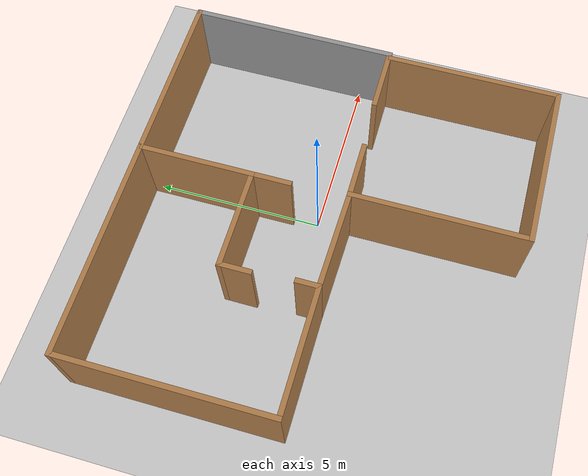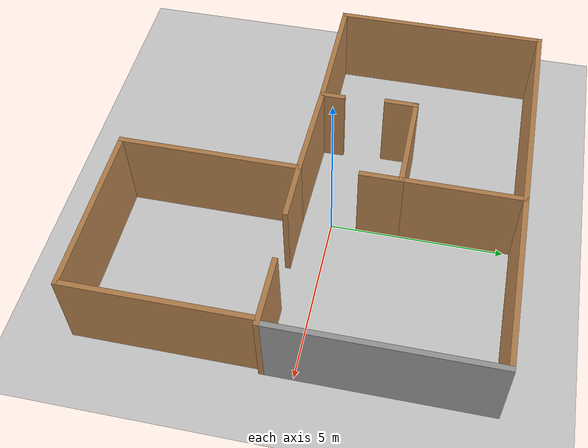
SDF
<?xml version="1.0"?>
<sdf version="1.4">

    <world name="world_name">
        <include>
            <uri>model://ground_plane</uri>
        </include>
        <include>
            <uri>model://sun</uri>
        </include>
        <include>
            <uri>model:///home/vishal/catkin_ws/src/apostile_robot/models/floor_plan</uri>

        </include>

    </world>
</sdf>

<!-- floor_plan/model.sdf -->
<sdf version='1.6'>
  <model name='floor_plan'>
    <pose frame=''>-0.728978 -0.389592 0 0 -0 0</pose>
    <link name='Wall_0'>
      <collision name='Wall_0_Collision'>
        <geometry>
          <box>
            <size>6.25 0.15 2.5</size>
          </box>
        </geometry>
        <pose frame=''>0 0 1.25 0 -0 0</pose>
      </collision>
      <visual name='Wall_0_Visual'>
        <pose frame=''>0 0 1.25 0 -0 0</pose>
        <geometry>
          <box>
            <size>6.25 0.15 2.5</size>
          </box>
        </geometry>
        <material>
          <script>
            <uri>file://media/materials/scripts/gazebo.material</uri>
            <name>Gazebo/Wood</name>
          </script>
          <ambient>1 1 1 1</ambient>
        </material>
        <meta>
          <layer>0</layer>
        </meta>
      </visual>
      <pose frame=''>-5.725 2.58398 0 0 -0 -1.5708</pose>
    </link>
    <link name='Wall_1'>
      <collision name='Wall_1_Collision'>
        <geometry>
          <box>
            <size>3.75 0.15 2.5</size>
          </box>
        </geometry>
        <pose frame=''>0 0 1.25 0 -0 0</pose>
      </collision>
      <visual name='Wall_1_Visual'>
        <pose frame=''>0 0 1.25 0 -0 0</pose>
        <geometry>
          <box>
            <size>3.75 0.15 2.5</size>
          </box>
        </geometry>
        <material>
          <script>
            <uri>file://media/materials/scripts/gazebo.material</uri>
            <name>Gazebo/Wood</name>
          </script>
          <ambient>1 1 1 1</ambient>
        </material>
        <meta>
          <layer>0</layer>
        </meta>
      </visual>
      <pose frame=''>-3.925 -0.466021 0 0 -0 0</pose>
    </link>
    <link name='Wall_10'>
      <collision name='Wall_10_Collision'>
        <geometry>
          <box>
            <size>6.25 0.15 2.5</size>
          </box>
        </geometry>
        <pose frame=''>0 0 1.25 0 -0 0</pose>
      </collision>
      <visual name='Wall_10_Visual'>
        <pose frame=''>0 0 1.25 0 -0 0</pose>
        <geometry>
          <box>
            <size>6.25 0.15 2.5</size>
          </box>
        </geometry>
        <material>
          <script>
            <uri>file://media/materials/scripts/gazebo.material</uri>
            <name>Gazebo/Grey</name>
          </script>
          <ambient>1 1 1 1</ambient>
        </material>
        <meta>
          <layer>0</layer>
        </meta>
      </visual>
      <pose frame=''>5.725 2.58398 0 0 -0 -1.5708</pose>
    </link>
    <link name='Wall_11'>
      <collision name='Wall_11_Collision'>
        <geometry>
          <box>
            <size>2 0.15 2.5</size>
          </box>
        </geometry>
        <pose frame=''>0 0 1.25 0 -0 0</pose>
      </collision>
      <visual name='Wall_11_Visual'>
        <pose frame=''>0 0 1.25 0 -0 0</pose>
        <geometry>
          <box>
            <size>2 0.15 2.5</size>
          </box>
        </geometry>
        <material>
          <script>
            <uri>file://media/materials/scripts/gazebo.material</uri>
            <name>Gazebo/Wood</name>
          </script>
          <ambient>1 1 1 1</ambient>
        </material>
        <meta>
          <layer>0</layer>
        </meta>
      </visual>
      <pose frame=''>4.8 -0.466021 0 0 -0 3.14159</pose>
    </link>
    <link name='Wall_13'>
      <collision name='Wall_13_Collision'>
        <geometry>
          <box>
            <size>1.75 0.15 2.5</size>
          </box>
        </geometry>
        <pose frame=''>0 0 1.25 0 -0 0</pose>
      </collision>
      <visual name='Wall_13_Visual'>
        <pose frame=''>0 0 1.25 0 -0 0</pose>
        <geometry>
          <box>
            <size>1.75 0.15 2.5</size>
          </box>
        </geometry>
        <material>
          <script>
            <uri>file://media/materials/scripts/gazebo.material</uri>
            <name>Gazebo/Wood</name>
          </script>
          <ambient>1 1 1 1</ambient>
        </material>
        <meta>
          <layer>0</layer>
        </meta>
      </visual>
      <pose frame=''>1.54685 -0.533979 0 0 -0 3.14159</pose>
    </link>
    <link name='Wall_14'>
      <collision name='Wall_14_Collision'>
        <geometry>
          <box>
            <size>5.25 0.15 2.5</size>
          </box>
        </geometry>
        <pose frame=''>0 0 1.25 0 -0 0</pose>
      </collision>
      <visual name='Wall_14_Visual'>
        <pose frame=''>0 0 1.25 0 -0 0</pose>
        <geometry>
          <box>
            <size>5.25 0.15 2.5</size>
          </box>
        </geometry>
        <material>
          <script>
            <uri>file://media/materials/scripts/gazebo.material</uri>
            <name>Gazebo/Wood</name>
          </script>
          <ambient>1 1 1 1</ambient>
        </material>
        <meta>
          <layer>0</layer>
        </meta>
      </visual>
      <pose frame=''>0.746848 -3.08398 0 0 -0 -1.5708</pose>
    </link>
    <link name='Wall_15'>
      <collision name='Wall_15_Collision'>
        <geometry>
          <box>
            <size>5 0.15 2.5</size>
          </box>
        </geometry>
        <pose frame=''>0 0 1.25 0 -0 0</pose>
      </collision>
      <visual name='Wall_15_Visual'>
        <pose frame=''>0 0 1.25 0 -0 0</pose>
        <geometry>
          <box>
            <size>5 0.15 2.5</size>
          </box>
        </geometry>
        <material>
          <script>
            <uri>file://media/materials/scripts/gazebo.material</uri>
            <name>Gazebo/Wood</name>
          </script>
          <ambient>1 1 1 1</ambient>
        </material>
        <meta>
          <layer>0</layer>
        </meta>
      </visual>
      <pose frame=''>3.17185 -5.63398 0 0 -0 0</pose>
    </link>
    <link name='Wall_16'>
      <collision name='Wall_16_Collision'>
        <geometry>
          <box>
            <size>5.25 0.15 2.5</size>
          </box>
        </geometry>
        <pose frame=''>0 0 1.25 0 -0 0</pose>
      </collision>
      <visual name='Wall_16_Visual'>
        <pose frame=''>0 0 1.25 0 -0 0</pose>
        <geometry>
          <box>
            <size>5.25 0.15 2.5</size>
          </box>
        </geometry>
        <material>
          <script>
            <uri>file://media/materials/scripts/gazebo.material</uri>
            <name>Gazebo/Wood</name>
          </script>
          <ambient>1 1 1 1</ambient>
        </material>
        <meta>
          <layer>0</layer>
        </meta>
      </visual>
      <pose frame=''>5.59685 -3.08398 0 0 -0 1.5708</pose>
    </link>
    <link name='Wall_18'>
      <collision name='Wall_18_Collision'>
        <geometry>
          <box>
            <size>1.25 0.15 2.5</size>
          </box>
        </geometry>
        <pose frame=''>0 0 1.25 0 -0 0</pose>
      </collision>
      <visual name='Wall_18_Visual'>
        <pose frame=''>0 0 1.25 0 -0 0</pose>
        <geometry>
          <box>
            <size>1.25 0.15 2.5</size>
          </box>
        </geometry>
        <material>
          <script>
            <uri>file://media/materials/scripts/gazebo.material</uri>
            <name>Gazebo/Wood</name>
          </script>
          <ambient>1 1 1 1</ambient>
        </material>
        <meta>
          <layer>0</layer>
        </meta>
      </visual>
      <pose frame=''>0.625 1.73398 0 0 -0 -1.5708</pose>
    </link>
    <link name='Wall_2'>
      <collision name='Wall_2_Collision'>
        <geometry>
          <box>
            <size>0.75 0.15 2.5</size>
          </box>
        </geometry>
        <pose frame=''>0 0 1.25 0 -0 0</pose>
      </collision>
      <visual name='Wall_2_Visual'>
        <pose frame=''>0 0 1.25 0 -0 0</pose>
        <geometry>
          <box>
            <size>0.75 0.15 2.5</size>
          </box>
        </geometry>
        <material>
          <script>
            <uri>file://media/materials/scripts/gazebo.material</uri>
            <name>Gazebo/Wood</name>
          </script>
          <ambient>1 1 1 1</ambient>
        </material>
        <meta>
          <layer>0</layer>
        </meta>
      </visual>
      <pose frame=''>-2.125 -0.166021 0 0 -0 1.5708</pose>
    </link>
    <link name='Wall_20'>
      <collision name='Wall_20_Collision'>
        <geometry>
          <box>
            <size>3.02265 0.15 2.5</size>
          </box>
        </geometry>
        <pose frame=''>0 0 1.25 0 -0 0</pose>
      </collision>
      <visual name='Wall_20_Visual'>
        <pose frame=''>0 0 1.25 0 -0 0</pose>
        <geometry>
          <box>
            <size>3.02265 0.15 2.5</size>
          </box>
        </geometry>
        <material>
          <script>
            <uri>file://media/materials/scripts/gazebo.material</uri>
            <name>Gazebo/Wood</name>
          </script>
          <ambient>1 1 1 1</ambient>
        </material>
        <meta>
          <layer>0</layer>
        </meta>
      </visual>
      <pose frame=''>-0.689076 -0.5 0 0 -0 3.11793</pose>
    </link>
    <link name='Wall_4'>
      <collision name='Wall_4_Collision'>
        <geometry>
          <box>
            <size>6.5 0.15 2.5</size>
          </box>
        </geometry>
        <pose frame=''>0 0 1.25 0 -0 0</pose>
      </collision>
      <visual name='Wall_4_Visual'>
        <pose frame=''>0 0 1.25 0 -0 0</pose>
        <geometry>
          <box>
            <size>6.5 0.15 2.5</size>
          </box>
        </geometry>
        <material>
          <script>
            <uri>file://media/materials/scripts/gazebo.material</uri>
            <name>Gazebo/Wood</name>
          </script>
          <ambient>1 1 1 1</ambient>
        </material>
        <meta>
          <layer>0</layer>
        </meta>
      </visual>
      <pose frame=''>-2.55 5.63398 0 0 -0 0</pose>
    </link>
    <link name='Wall_5'>
      <collision name='Wall_5_Collision'>
        <geometry>
          <box>
            <size>3.5 0.15 2.5</size>
          </box>
        </geometry>
        <pose frame=''>0 0 1.25 0 -0 0</pose>
      </collision>
      <visual name='Wall_5_Visual'>
        <pose frame=''>0 0 1.25 0 -0 0</pose>
        <geometry>
          <box>
            <size>3.5 0.15 2.5</size>
          </box>
        </geometry>
        <material>
          <script>
            <uri>file://media/materials/scripts/gazebo.material</uri>
            <name>Gazebo/Wood</name>
          </script>
          <ambient>1 1 1 1</ambient>
        </material>
        <meta>
          <layer>0</layer>
        </meta>
      </visual>
      <pose frame=''>0.625 3.95898 0 0 -0 -1.5708</pose>
    </link>
    <link name='Wall_6'>
      <collision name='Wall_6_Collision'>
        <geometry>
          <box>
            <size>3 0.15 2.5</size>
          </box>
        </geometry>
        <pose frame=''>0 0 1.25 0 -0 0</pose>
      </collision>
      <visual name='Wall_6_Visual'>
        <pose frame=''>0 0 1.25 0 -0 0</pose>
        <geometry>
          <box>
            <size>3 0.15 2.5</size>
          </box>
        </geometry>
        <material>
          <script>
            <uri>file://media/materials/scripts/gazebo.material</uri>
            <name>Gazebo/Wood</name>
          </script>
          <ambient>1 1 1 1</ambient>
        </material>
        <meta>
          <layer>0</layer>
        </meta>
      </visual>
      <pose frame=''>-0.8 2.28398 0 0 -0 3.14159</pose>
    </link>
    <link name='Wall_7'>
      <collision name='Wall_7_Collision'>
        <geometry>
          <box>
            <size>1 0.15 2.5</size>
          </box>
        </geometry>
        <pose frame=''>0 0 1.25 0 -0 0</pose>
      </collision>
      <visual name='Wall_7_Visual'>
        <pose frame=''>0 0 1.25 0 -0 0</pose>
        <geometry>
          <box>
            <size>1 0.15 2.5</size>
          </box>
        </geometry>
        <material>
          <script>
            <uri>file://media/materials/scripts/gazebo.material</uri>
            <name>Gazebo/Wood</name>
          </script>
          <ambient>1 1 1 1</ambient>
        </material>
        <meta>
          <layer>0</layer>
        </meta>
      </visual>
      <pose frame=''>-2.225 1.85898 0 0 -0 -1.5708</pose>
    </link>
    <link name='Wall_9'>
      <collision name='Wall_9_Collision'>
        <geometry>
          <box>
            <size>5.25 0.15 2.5</size>
          </box>
        </geometry>
        <pose frame=''>0 0 1.25 0 -0 0</pose>
      </collision>
      <visual name='Wall_9_Visual'>
        <pose frame=''>0 0 1.25 0 -0 0</pose>
        <geometry>
          <box>
            <size>5.25 0.15 2.5</size>
          </box>
        </geometry>
        <material>
          <script>
            <uri>file://media/materials/scripts/gazebo.material</uri>
            <name>Gazebo/Wood</name>
          </script>
          <ambient>1 1 1 1</ambient>
        </material>
        <meta>
          <layer>0</layer>
        </meta>
      </visual>
      <pose frame=''>3.175 5.63398 0 0 -0 0</pose>
    </link>
    <static>1</static>
  </model>
</sdf>
